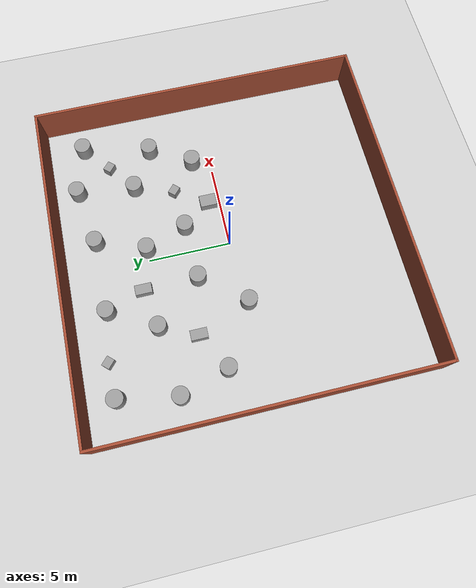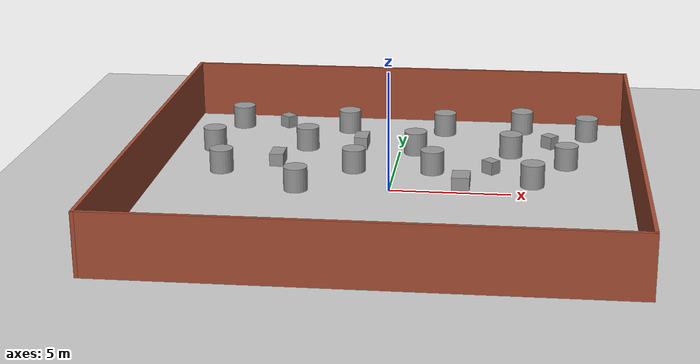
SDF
<sdf version="1.7">
 <world name="default">
  <model name="ground_plane">
   <static>1</static>
   <link name="link">
    <collision name="collision">
     <geometry><plane><normal>0 0 1</normal><size>100 100</size></plane></geometry>
     <surface><friction><ode><mu>100</mu><mu2>50</mu2></ode></friction></surface>
    </collision>
    <visual name="visual">
     <cast_shadows>0</cast_shadows>
     <geometry><plane><normal>0 0 1</normal><size>100 100</size></plane></geometry>
     <material>
      <script><uri>file://media/materials/scripts/gazebo.material</uri><name>Gazebo/Grey</name></script>
     </material>
    </visual>
   </link>
  </model>
  <model name="20_20_wall">
   <link name="Wall_0">
    <collision name="Wall_0_Collision">
     <geometry><box><size>20.15 0.15 2.5</size></box></geometry>
     <pose>0 0 1.25 0 -0 0</pose>
    </collision>
    <visual name="Wall_0_Visual">
     <pose>0 0 1.25 0 -0 0</pose>
     <geometry><box><size>20.15 0.15 2.5</size></box></geometry>
     <material>
      <script><uri>file://media/materials/scripts/gazebo.material</uri><name>Gazebo/Bricks</name></script>
      <ambient>1 1 1 1</ambient>
     </material>
     <meta><layer>0</layer></meta>
    </visual>
    <pose>0 10 0 0 -0 0</pose>
   </link>
   <link name="Wall_1">
    <collision name="Wall_1_Collision">
     <geometry><box><size>20.15 0.15 2.5</size></box></geometry>
     <pose>0 0 1.25 0 -0 0</pose>
    </collision>
    <visual name="Wall_1_Visual">
     <pose>0 0 1.25 0 -0 0</pose>
     <geometry><box><size>20.15 0.15 2.5</size></box></geometry>
     <material>
      <script><uri>file://media/materials/scripts/gazebo.material</uri><name>Gazebo/Bricks</name></script>
      <ambient>1 1 1 1</ambient>
     </material>
     <meta><layer>0</layer></meta>
    </visual>
    <pose>10 0 0 0 -0 -1.5708</pose>
   </link>
   <link name="Wall_2">
    <collision name="Wall_2_Collision">
     <geometry><box><size>20.15 0.15 2.5</size></box></geometry>
     <pose>0 0 1.25 0 -0 0</pose>
    </collision>
    <visual name="Wall_2_Visual">
     <pose>0 0 1.25 0 -0 0</pose>
     <geometry><box><size>20.15 0.15 2.5</size></box></geometry>
     <material>
      <script><uri>file://media/materials/scripts/gazebo.material</uri><name>Gazebo/Bricks</name></script>
      <ambient>1 1 1 1</ambient>
     </material>
     <meta><layer>0</layer></meta>
    </visual>
    <pose>0 -10 0 0 -0 3.14159</pose>
   </link>
   <link name="Wall_3">
    <collision name="Wall_3_Collision">
     <geometry><box><size>20.15 0.15 2.5</size></box></geometry>
     <pose>0 0 1.25 0 -0 0</pose>
    </collision>
    <visual name="Wall_3_Visual">
     <pose>0 0 1.25 0 -0 0</pose>
     <geometry><box><size>20.15 0.15 2.5</size></box></geometry>
     <material>
      <script><uri>file://media/materials/scripts/gazebo.material</uri><name>Gazebo/Bricks</name></script>
      <ambient>1 1 1 1</ambient>
     </material>
     <meta><layer>0</layer></meta>
    </visual>
    <pose>-10 0 0 0 -0 1.5708</pose>
   </link>
   <static>1</static>
  </model>
  <model name="固定圆柱">
   <link name="link">
    <inertial>
     <mass>1</mass>
     <inertia><ixx>0.145833</ixx><ixy>0</ixy><ixz>0</ixz><iyy>0.145833</iyy><iyz>0</iyz><izz>0.125</izz></inertia>
    </inertial>
    <visual name="visual">
     <geometry><cylinder><radius>0.5</radius><length>1</length></cylinder></geometry>
     <material>
      <script><name>Gazebo/Grey</name><uri>file://media/materials/scripts/gazebo.material</uri></script>
      <shader type="pixel"><normal_map>__default__</normal_map></shader>
     </material>
    </visual>
    <collision name="collision">
     <geometry><cylinder><radius>0.5</radius><length>1</length></cylinder></geometry>
     <surface>
      <friction>
       <ode><mu>1</mu><mu2>1</mu2><fdir1>0 0 0</fdir1><slip1>0</slip1><slip2>0</slip2></ode>
       <torsional>
        <coefficient>1</coefficient>
        <patch_radius>0</patch_radius>
        <surface_radius>0</surface_radius>
        <use_patch_radius>1</use_patch_radius>
        <ode><slip>0</slip></ode>
       </torsional>
      </friction>
      <bounce><restitution_coefficient>0</restitution_coefficient><threshold>1e+06</threshold></bounce>
      <contact>
       <collide_without_contact>0</collide_without_contact>
       <collide_without_contact_bitmask>1</collide_without_contact_bitmask>
       <collide_bitmask>1</collide_bitmask>
       <ode>
        <soft_cfm>0</soft_cfm>
        <soft_erp>0.2</soft_erp>
        <kp>1e+13</kp>
        <kd>1</kd>
        <max_vel>0.01</max_vel>
        <min_depth>0</min_depth>
       </ode>
       <bullet>
        <split_impulse>1</split_impulse>
        <split_impulse_penetration_threshold>-0.01</split_impulse_penetration_threshold>
        <soft_cfm>0</soft_cfm>
        <soft_erp>0.2</soft_erp>
        <kp>1e+13</kp>
        <kd>1</kd>
       </bullet>
      </contact>
     </surface>
    </collision>
   </link>
   <static>1</static>
   <pose>0.688811 4.97248 0.5 0 -0 0</pose>
  </model>
  <model name="固定圆柱_clone">
   <link name="link">
    <inertial>
     <mass>1</mass>
     <inertia><ixx>0.145833</ixx><ixy>0</ixy><ixz>0</ixz><iyy>0.145833</iyy><iyz>0</iyz><izz>0.125</izz></inertia>
    </inertial>
    <visual name="visual">
     <geometry><cylinder><radius>0.5</radius><length>1</length></cylinder></geometry>
     <material>
      <script><name>Gazebo/Grey</name><uri>file://media/materials/scripts/gazebo.material</uri></script>
      <shader type="pixel"><normal_map>__default__</normal_map></shader>
     </material>
    </visual>
    <collision name="collision">
     <geometry><cylinder><radius>0.5</radius><length>1</length></cylinder></geometry>
     <surface>
      <friction>
       <ode><mu>1</mu><mu2>1</mu2><fdir1>0 0 0</fdir1><slip1>0</slip1><slip2>0</slip2></ode>
       <torsional>
        <coefficient>1</coefficient>
        <patch_radius>0</patch_radius>
        <surface_radius>0</surface_radius>
        <use_patch_radius>1</use_patch_radius>
        <ode><slip>0</slip></ode>
       </torsional>
      </friction>
      <bounce><restitution_coefficient>0</restitution_coefficient><threshold>1e+06</threshold></bounce>
      <contact>
       <collide_without_contact>0</collide_without_contact>
       <collide_without_contact_bitmask>1</collide_without_contact_bitmask>
       <collide_bitmask>1</collide_bitmask>
       <ode>
        <soft_cfm>0</soft_cfm>
        <soft_erp>0.2</soft_erp>
        <kp>1e+13</kp>
        <kd>1</kd>
        <max_vel>0.01</max_vel>
        <min_depth>0</min_depth>
       </ode>
       <bullet>
        <split_impulse>1</split_impulse>
        <split_impulse_penetration_threshold>-0.01</split_impulse_penetration_threshold>
        <soft_cfm>0</soft_cfm>
        <soft_erp>0.2</soft_erp>
        <kp>1e+13</kp>
        <kd>1</kd>
       </bullet>
      </contact>
     </surface>
    </collision>
   </link>
   <static>1</static>
   <pose>-4.14469 5.18074 0.5 0 -0 0</pose>
  </model>
  <model name="固定圆柱_clone_1">
   <link name="link">
    <inertial>
     <mass>1</mass>
     <inertia><ixx>0.145833</ixx><ixy>0</ixy><ixz>0</ixz><iyy>0.145833</iyy><iyz>0</iyz><izz>0.125</izz></inertia>
    </inertial>
    <visual name="visual">
     <geometry><cylinder><radius>0.5</radius><length>1</length></cylinder></geometry>
     <material>
      <script><name>Gazebo/Grey</name><uri>file://media/materials/scripts/gazebo.material</uri></script>
      <shader type="pixel"><normal_map>__default__</normal_map></shader>
     </material>
    </visual>
    <collision name="collision">
     <geometry><cylinder><radius>0.5</radius><length>1</length></cylinder></geometry>
     <surface>
      <friction>
       <ode><mu>1</mu><mu2>1</mu2><fdir1>0 0 0</fdir1><slip1>0</slip1><slip2>0</slip2></ode>
       <torsional>
        <coefficient>1</coefficient>
        <patch_radius>0</patch_radius>
        <surface_radius>0</surface_radius>
        <use_patch_radius>1</use_patch_radius>
        <ode><slip>0</slip></ode>
       </torsional>
      </friction>
      <bounce><restitution_coefficient>0</restitution_coefficient><threshold>1e+06</threshold></bounce>
      <contact>
       <collide_without_contact>0</collide_without_contact>
       <collide_without_contact_bitmask>1</collide_without_contact_bitmask>
       <collide_bitmask>1</collide_bitmask>
       <ode>
        <soft_cfm>0</soft_cfm>
        <soft_erp>0.2</soft_erp>
        <kp>1e+13</kp>
        <kd>1</kd>
        <max_vel>0.01</max_vel>
        <min_depth>0</min_depth>
       </ode>
       <bullet>
        <split_impulse>1</split_impulse>
        <split_impulse_penetration_threshold>-0.01</split_impulse_penetration_threshold>
        <soft_cfm>0</soft_cfm>
        <soft_erp>0.2</soft_erp>
        <kp>1e+13</kp>
        <kd>1</kd>
       </bullet>
      </contact>
     </surface>
    </collision>
   </link>
   <static>1</static>
   <pose>-3.82318 -0.245467 0.5 0 -0 0</pose>
  </model>
  <model name="固定圆柱_clone_3">
   <link name="link">
    <inertial>
     <mass>1</mass>
     <inertia><ixx>0.145833</ixx><ixy>0</ixy><ixz>0</ixz><iyy>0.145833</iyy><iyz>0</iyz><izz>0.125</izz></inertia>
    </inertial>
    <visual name="visual">
     <geometry><cylinder><radius>0.5</radius><length>1</length></cylinder></geometry>
     <material>
      <script><name>Gazebo/Grey</name><uri>file://media/materials/scripts/gazebo.material</uri></script>
      <shader type="pixel"><normal_map>__default__</normal_map></shader>
     </material>
    </visual>
    <collision name="collision">
     <geometry><cylinder><radius>0.5</radius><length>1</length></cylinder></geometry>
     <surface>
      <friction>
       <ode><mu>1</mu><mu2>1</mu2><fdir1>0 0 0</fdir1><slip1>0</slip1><slip2>0</slip2></ode>
       <torsional>
        <coefficient>1</coefficient>
        <patch_radius>0</patch_radius>
        <surface_radius>0</surface_radius>
        <use_patch_radius>1</use_patch_radius>
        <ode><slip>0</slip></ode>
       </torsional>
      </friction>
      <bounce><restitution_coefficient>0</restitution_coefficient><threshold>1e+06</threshold></bounce>
      <contact>
       <collide_without_contact>0</collide_without_contact>
       <collide_without_contact_bitmask>1</collide_without_contact_bitmask>
       <collide_bitmask>1</collide_bitmask>
       <ode>
        <soft_cfm>0</soft_cfm>
        <soft_erp>0.2</soft_erp>
        <kp>1e+13</kp>
        <kd>1</kd>
        <max_vel>0.01</max_vel>
        <min_depth>0</min_depth>
       </ode>
       <bullet>
        <split_impulse>1</split_impulse>
        <split_impulse_penetration_threshold>-0.01</split_impulse_penetration_threshold>
        <soft_cfm>0</soft_cfm>
        <soft_erp>0.2</soft_erp>
        <kp>1e+13</kp>
        <kd>1</kd>
       </bullet>
      </contact>
     </surface>
    </collision>
   </link>
   <static>1</static>
   <pose>4.88498 4.9968 0.5 0 -0 0</pose>
  </model>
  <model name="固定圆柱_clone_6">
   <link name="link">
    <inertial>
     <mass>1</mass>
     <inertia><ixx>0.145833</ixx><ixy>0</ixy><ixz>0</ixz><iyy>0.145833</iyy><iyz>0</iyz><izz>0.125</izz></inertia>
    </inertial>
    <visual name="visual">
     <geometry><cylinder><radius>0.5</radius><length>1</length></cylinder></geometry>
     <material>
      <script><name>Gazebo/Grey</name><uri>file://media/materials/scripts/gazebo.material</uri></script>
      <shader type="pixel"><normal_map>__default__</normal_map></shader>
     </material>
    </visual>
    <collision name="collision">
     <geometry><cylinder><radius>0.5</radius><length>1</length></cylinder></geometry>
     <surface>
      <friction>
       <ode><mu>1</mu><mu2>1</mu2><fdir1>0 0 0</fdir1><slip1>0</slip1><slip2>0</slip2></ode>
       <torsional>
        <coefficient>1</coefficient>
        <patch_radius>0</patch_radius>
        <surface_radius>0</surface_radius>
        <use_patch_radius>1</use_patch_radius>
        <ode><slip>0</slip></ode>
       </torsional>
      </friction>
      <bounce><restitution_coefficient>0</restitution_coefficient><threshold>1e+06</threshold></bounce>
      <contact>
       <collide_without_contact>0</collide_without_contact>
       <collide_without_contact_bitmask>1</collide_without_contact_bitmask>
       <collide_bitmask>1</collide_bitmask>
       <ode>
        <soft_cfm>0</soft_cfm>
        <soft_erp>0.2</soft_erp>
        <kp>1e+13</kp>
        <kd>1</kd>
        <max_vel>0.01</max_vel>
        <min_depth>0</min_depth>
       </ode>
       <bullet>
        <split_impulse>1</split_impulse>
        <split_impulse_penetration_threshold>-0.01</split_impulse_penetration_threshold>
        <soft_cfm>0</soft_cfm>
        <soft_erp>0.2</soft_erp>
        <kp>1e+13</kp>
        <kd>1</kd>
       </bullet>
      </contact>
     </surface>
    </collision>
   </link>
   <static>1</static>
   <pose>5.86042 1.12448 0.5 0 -0 0</pose>
  </model>
  <model name="固定圆柱_clone_7">
   <link name="link">
    <inertial>
     <mass>1</mass>
     <inertia><ixx>0.145833</ixx><ixy>0</ixy><ixz>0</ixz><iyy>0.145833</iyy><iyz>0</iyz><izz>0.125</izz></inertia>
    </inertial>
    <visual name="visual">
     <geometry><cylinder><radius>0.5</radius><length>1</length></cylinder></geometry>
     <material>
      <script><name>Gazebo/Grey</name><uri>file://media/materials/scripts/gazebo.material</uri></script>
      <shader type="pixel"><normal_map>__default__</normal_map></shader>
     </material>
    </visual>
    <collision name="collision">
     <geometry><cylinder><radius>0.5</radius><length>1</length></cylinder></geometry>
     <surface>
      <friction>
       <ode><mu>1</mu><mu2>1</mu2><fdir1>0 0 0</fdir1><slip1>0</slip1><slip2>0</slip2></ode>
       <torsional>
        <coefficient>1</coefficient>
        <patch_radius>0</patch_radius>
        <surface_radius>0</surface_radius>
        <use_patch_radius>1</use_patch_radius>
        <ode><slip>0</slip></ode>
       </torsional>
      </friction>
      <bounce><restitution_coefficient>0</restitution_coefficient><threshold>1e+06</threshold></bounce>
      <contact>
       <collide_without_contact>0</collide_without_contact>
       <collide_without_contact_bitmask>1</collide_without_contact_bitmask>
       <collide_bitmask>1</collide_bitmask>
       <ode>
        <soft_cfm>0</soft_cfm>
        <soft_erp>0.2</soft_erp>
        <kp>1e+13</kp>
        <kd>1</kd>
        <max_vel>0.01</max_vel>
        <min_depth>0</min_depth>
       </ode>
       <bullet>
        <split_impulse>1</split_impulse>
        <split_impulse_penetration_threshold>-0.01</split_impulse_penetration_threshold>
        <soft_cfm>0</soft_cfm>
        <soft_erp>0.2</soft_erp>
        <kp>1e+13</kp>
        <kd>1</kd>
       </bullet>
      </contact>
     </surface>
    </collision>
   </link>
   <static>1</static>
   <pose>8.25202 7.7046 0.5 0 -0 0</pose>
  </model>
  <model name="固定圆柱_clone_8">
   <link name="link">
    <inertial>
     <mass>1</mass>
     <inertia><ixx>0.145833</ixx><ixy>0</ixy><ixz>0</ixz><iyy>0.145833</iyy><iyz>0</iyz><izz>0.125</izz></inertia>
    </inertial>
    <visual name="visual">
     <geometry><cylinder><radius>0.5</radius><length>1</length></cylinder></geometry>
     <material>
      <script><name>Gazebo/Grey</name><uri>file://media/materials/scripts/gazebo.material</uri></script>
      <shader type="pixel"><normal_map>__default__</normal_map></shader>
     </material>
    </visual>
    <collision name="collision">
     <geometry><cylinder><radius>0.5</radius><length>1</length></cylinder></geometry>
     <surface>
      <friction>
       <ode><mu>1</mu><mu2>1</mu2><fdir1>0 0 0</fdir1><slip1>0</slip1><slip2>0</slip2></ode>
       <torsional>
        <coefficient>1</coefficient>
        <patch_radius>0</patch_radius>
        <surface_radius>0</surface_radius>
        <use_patch_radius>1</use_patch_radius>
        <ode><slip>0</slip></ode>
       </torsional>
      </friction>
      <bounce><restitution_coefficient>0</restitution_coefficient><threshold>1e+06</threshold></bounce>
      <contact>
       <collide_without_contact>0</collide_without_contact>
       <collide_without_contact_bitmask>1</collide_without_contact_bitmask>
       <collide_bitmask>1</collide_bitmask>
       <ode>
        <soft_cfm>0</soft_cfm>
        <soft_erp>0.2</soft_erp>
        <kp>1e+13</kp>
        <kd>1</kd>
        <max_vel>0.01</max_vel>
        <min_depth>0</min_depth>
       </ode>
       <bullet>
        <split_impulse>1</split_impulse>
        <split_impulse_penetration_threshold>-0.01</split_impulse_penetration_threshold>
        <soft_cfm>0</soft_cfm>
        <soft_erp>0.2</soft_erp>
        <kp>1e+13</kp>
        <kd>1</kd>
       </bullet>
      </contact>
     </surface>
    </collision>
   </link>
   <static>1</static>
   <pose>1.81026 7.9231 0.5 0 -0 0</pose>
  </model>
  <model name="固定圆柱_clone_9">
   <link name="link">
    <inertial>
     <mass>1</mass>
     <inertia><ixx>0.145833</ixx><ixy>0</ixy><ixz>0</ixz><iyy>0.145833</iyy><iyz>0</iyz><izz>0.125</izz></inertia>
    </inertial>
    <visual name="visual">
     <geometry><cylinder><radius>0.5</radius><length>1</length></cylinder></geometry>
     <material>
      <script><name>Gazebo/Grey</name><uri>file://media/materials/scripts/gazebo.material</uri></script>
      <shader type="pixel"><normal_map>__default__</normal_map></shader>
     </material>
    </visual>
    <collision name="collision">
     <geometry><cylinder><radius>0.5</radius><length>1</length></cylinder></geometry>
     <surface>
      <friction>
       <ode><mu>1</mu><mu2>1</mu2><fdir1>0 0 0</fdir1><slip1>0</slip1><slip2>0</slip2></ode>
       <torsional>
        <coefficient>1</coefficient>
        <patch_radius>0</patch_radius>
        <surface_radius>0</surface_radius>
        <use_patch_radius>1</use_patch_radius>
        <ode><slip>0</slip></ode>
       </torsional>
      </friction>
      <bounce><restitution_coefficient>0</restitution_coefficient><threshold>1e+06</threshold></bounce>
      <contact>
       <collide_without_contact>0</collide_without_contact>
       <collide_without_contact_bitmask>1</collide_without_contact_bitmask>
       <collide_bitmask>1</collide_bitmask>
       <ode>
        <soft_cfm>0</soft_cfm>
        <soft_erp>0.2</soft_erp>
        <kp>1e+13</kp>
        <kd>1</kd>
        <max_vel>0.01</max_vel>
        <min_depth>0</min_depth>
       </ode>
       <bullet>
        <split_impulse>1</split_impulse>
        <split_impulse_penetration_threshold>-0.01</split_impulse_penetration_threshold>
        <soft_cfm>0</soft_cfm>
        <soft_erp>0.2</soft_erp>
        <kp>1e+13</kp>
        <kd>1</kd>
       </bullet>
      </contact>
     </surface>
    </collision>
   </link>
   <static>1</static>
   <pose>-2.59298 7.92968 0.5 0 -0 0</pose>
  </model>
  <model name="固定圆柱_clone_10">
   <link name="link">
    <inertial>
     <mass>1</mass>
     <inertia><ixx>0.145833</ixx><ixy>0</ixy><ixz>0</ixz><iyy>0.145833</iyy><iyz>0</iyz><izz>0.125</izz></inertia>
    </inertial>
    <visual name="visual">
     <geometry><cylinder><radius>0.5</radius><length>1</length></cylinder></geometry>
     <material>
      <script><name>Gazebo/Grey</name><uri>file://media/materials/scripts/gazebo.material</uri></script>
      <shader type="pixel"><normal_map>__default__</normal_map></shader>
     </material>
    </visual>
    <collision name="collision">
     <geometry><cylinder><radius>0.5</radius><length>1</length></cylinder></geometry>
     <surface>
      <friction>
       <ode><mu>1</mu><mu2>1</mu2><fdir1>0 0 0</fdir1><slip1>0</slip1><slip2>0</slip2></ode>
       <torsional>
        <coefficient>1</coefficient>
        <patch_radius>0</patch_radius>
        <surface_radius>0</surface_radius>
        <use_patch_radius>1</use_patch_radius>
        <ode><slip>0</slip></ode>
       </torsional>
      </friction>
      <bounce><restitution_coefficient>0</restitution_coefficient><threshold>1e+06</threshold></bounce>
      <contact>
       <collide_without_contact>0</collide_without_contact>
       <collide_without_contact_bitmask>1</collide_without_contact_bitmask>
       <collide_bitmask>1</collide_bitmask>
       <ode>
        <soft_cfm>0</soft_cfm>
        <soft_erp>0.2</soft_erp>
        <kp>1e+13</kp>
        <kd>1</kd>
        <max_vel>0.01</max_vel>
        <min_depth>0</min_depth>
       </ode>
       <bullet>
        <split_impulse>1</split_impulse>
        <split_impulse_penetration_threshold>-0.01</split_impulse_penetration_threshold>
        <soft_cfm>0</soft_cfm>
        <soft_erp>0.2</soft_erp>
        <kp>1e+13</kp>
        <kd>1</kd>
       </bullet>
      </contact>
     </surface>
    </collision>
   </link>
   <static>1</static>
   <pose>-7.60473 8.21031 0.5 0 -0 0</pose>
  </model>
  <model name="固定圆柱_clone_13">
   <link name="link">
    <inertial>
     <mass>1</mass>
     <inertia><ixx>0.145833</ixx><ixy>0</ixy><ixz>0</ixz><iyy>0.145833</iyy><iyz>0</iyz><izz>0.125</izz></inertia>
    </inertial>
    <visual name="visual">
     <geometry><cylinder><radius>0.5</radius><length>1</length></cylinder></geometry>
     <material>
      <script><name>Gazebo/Grey</name><uri>file://media/materials/scripts/gazebo.material</uri></script>
      <shader type="pixel"><normal_map>__default__</normal_map></shader>
     </material>
    </visual>
    <collision name="collision">
     <geometry><cylinder><radius>0.5</radius><length>1</length></cylinder></geometry>
     <surface>
      <friction>
       <ode><mu>1</mu><mu2>1</mu2><fdir1>0 0 0</fdir1><slip1>0</slip1><slip2>0</slip2></ode>
       <torsional>
        <coefficient>1</coefficient>
        <patch_radius>0</patch_radius>
        <surface_radius>0</surface_radius>
        <use_patch_radius>1</use_patch_radius>
        <ode><slip>0</slip></ode>
       </torsional>
      </friction>
      <bounce><restitution_coefficient>0</restitution_coefficient><threshold>1e+06</threshold></bounce>
      <contact>
       <collide_without_contact>0</collide_without_contact>
       <collide_without_contact_bitmask>1</collide_without_contact_bitmask>
       <collide_bitmask>1</collide_bitmask>
       <ode>
        <soft_cfm>0</soft_cfm>
        <soft_erp>0.2</soft_erp>
        <kp>1e+13</kp>
        <kd>1</kd>
        <max_vel>0.01</max_vel>
        <min_depth>0</min_depth>
       </ode>
       <bullet>
        <split_impulse>1</split_impulse>
        <split_impulse_penetration_threshold>-0.01</split_impulse_penetration_threshold>
        <soft_cfm>0</soft_cfm>
        <soft_erp>0.2</soft_erp>
        <kp>1e+13</kp>
        <kd>1</kd>
       </bullet>
      </contact>
     </surface>
    </collision>
   </link>
   <static>1</static>
   <pose>-1.73232 2.34307 0.5 0 -0 0</pose>
  </model>
  <model name="固定圆柱_clone_18">
   <link name="link">
    <inertial>
     <mass>1</mass>
     <inertia><ixx>0.145833</ixx><ixy>0</ixy><ixz>0</ixz><iyy>0.145833</iyy><iyz>0</iyz><izz>0.125</izz></inertia>
    </inertial>
    <visual name="visual">
     <geometry><cylinder><radius>0.5</radius><length>1</length></cylinder></geometry>
     <material>
      <script><name>Gazebo/Grey</name><uri>file://media/materials/scripts/gazebo.material</uri></script>
      <shader type="pixel"><normal_map>__default__</normal_map></shader>
     </material>
    </visual>
    <collision name="collision">
     <geometry><cylinder><radius>0.5</radius><length>1</length></cylinder></geometry>
     <surface>
      <friction>
       <ode><mu>1</mu><mu2>1</mu2><fdir1>0 0 0</fdir1><slip1>0</slip1><slip2>0</slip2></ode>
       <torsional>
        <coefficient>1</coefficient>
        <patch_radius>0</patch_radius>
        <surface_radius>0</surface_radius>
        <use_patch_radius>1</use_patch_radius>
        <ode><slip>0</slip></ode>
       </torsional>
      </friction>
      <bounce><restitution_coefficient>0</restitution_coefficient><threshold>1e+06</threshold></bounce>
      <contact>
       <collide_without_contact>0</collide_without_contact>
       <collide_without_contact_bitmask>1</collide_without_contact_bitmask>
       <collide_bitmask>1</collide_bitmask>
       <ode>
        <soft_cfm>0</soft_cfm>
        <soft_erp>0.2</soft_erp>
        <kp>1e+13</kp>
        <kd>1</kd>
        <max_vel>0.01</max_vel>
        <min_depth>0</min_depth>
       </ode>
       <bullet>
        <split_impulse>1</split_impulse>
        <split_impulse_penetration_threshold>-0.01</split_impulse_penetration_threshold>
        <soft_cfm>0</soft_cfm>
        <soft_erp>0.2</soft_erp>
        <kp>1e+13</kp>
        <kd>1</kd>
       </bullet>
      </contact>
     </surface>
    </collision>
   </link>
   <static>1</static>
   <pose>-7.34245 1.78442 0.5 0 -0 0</pose>
  </model>
  <model name="固定圆柱_clone_19">
   <link name="link">
    <inertial>
     <mass>1</mass>
     <inertia><ixx>0.145833</ixx><ixy>0</ixy><ixz>0</ixz><iyy>0.145833</iyy><iyz>0</iyz><izz>0.125</izz></inertia>
    </inertial>
    <visual name="visual">
     <geometry><cylinder><radius>0.5</radius><length>1</length></cylinder></geometry>
     <material>
      <script><name>Gazebo/Grey</name><uri>file://media/materials/scripts/gazebo.material</uri></script>
      <shader type="pixel"><normal_map>__default__</normal_map></shader>
     </material>
    </visual>
    <collision name="collision">
     <geometry><cylinder><radius>0.5</radius><length>1</length></cylinder></geometry>
     <surface>
      <friction>
       <ode><mu>1</mu><mu2>1</mu2><fdir1>0 0 0</fdir1><slip1>0</slip1><slip2>0</slip2></ode>
       <torsional>
        <coefficient>1</coefficient>
        <patch_radius>0</patch_radius>
        <surface_radius>0</surface_radius>
        <use_patch_radius>1</use_patch_radius>
        <ode><slip>0</slip></ode>
       </torsional>
      </friction>
      <bounce><restitution_coefficient>0</restitution_coefficient><threshold>1e+06</threshold></bounce>
      <contact>
       <collide_without_contact>0</collide_without_contact>
       <collide_without_contact_bitmask>1</collide_without_contact_bitmask>
       <collide_bitmask>1</collide_bitmask>
       <ode>
        <soft_cfm>0</soft_cfm>
        <soft_erp>0.2</soft_erp>
        <kp>1e+13</kp>
        <kd>1</kd>
        <max_vel>0.01</max_vel>
        <min_depth>0</min_depth>
       </ode>
       <bullet>
        <split_impulse>1</split_impulse>
        <split_impulse_penetration_threshold>-0.01</split_impulse_penetration_threshold>
        <soft_cfm>0</soft_cfm>
        <soft_erp>0.2</soft_erp>
        <kp>1e+13</kp>
        <kd>1</kd>
       </bullet>
      </contact>
     </surface>
    </collision>
   </link>
   <static>1</static>
   <pose>-8.243 4.69389 0.5 0 -0 0</pose>
  </model>
  <model name="固定圆柱_clone_21">
   <link name="link">
    <inertial>
     <mass>1</mass>
     <inertia><ixx>0.145833</ixx><ixy>0</ixy><ixz>0</ixz><iyy>0.145833</iyy><iyz>0</iyz><izz>0.125</izz></inertia>
    </inertial>
    <visual name="visual">
     <geometry><cylinder><radius>0.5</radius><length>1</length></cylinder></geometry>
     <material>
      <script><name>Gazebo/Grey</name><uri>file://media/materials/scripts/gazebo.material</uri></script>
      <shader type="pixel"><normal_map>__default__</normal_map></shader>
     </material>
    </visual>
    <collision name="collision">
     <geometry><cylinder><radius>0.5</radius><length>1</length></cylinder></geometry>
     <surface>
      <friction>
       <ode><mu>1</mu><mu2>1</mu2><fdir1>0 0 0</fdir1><slip1>0</slip1><slip2>0</slip2></ode>
       <torsional>
        <coefficient>1</coefficient>
        <patch_radius>0</patch_radius>
        <surface_radius>0</surface_radius>
        <use_patch_radius>1</use_patch_radius>
        <ode><slip>0</slip></ode>
       </torsional>
      </friction>
      <bounce><restitution_coefficient>0</restitution_coefficient><threshold>1e+06</threshold></bounce>
      <contact>
       <collide_without_contact>0</collide_without_contact>
       <collide_without_contact_bitmask>1</collide_without_contact_bitmask>
       <collide_bitmask>1</collide_bitmask>
       <ode>
        <soft_cfm>0</soft_cfm>
        <soft_erp>0.2</soft_erp>
        <kp>1e+13</kp>
        <kd>1</kd>
        <max_vel>0.01</max_vel>
        <min_depth>0</min_depth>
       </ode>
       <bullet>
        <split_impulse>1</split_impulse>
        <split_impulse_penetration_threshold>-0.01</split_impulse_penetration_threshold>
        <soft_cfm>0</soft_cfm>
        <soft_erp>0.2</soft_erp>
        <kp>1e+13</kp>
        <kd>1</kd>
       </bullet>
      </contact>
     </surface>
    </collision>
   </link>
   <static>1</static>
   <pose>1.61045 2.44316 0.5 0 -0 0</pose>
  </model>
  <model name="固定圆柱_clone_24">
   <link name="link">
    <inertial>
     <mass>1</mass>
     <inertia><ixx>0.145833</ixx><ixy>0</ixy><ixz>0</ixz><iyy>0.145833</iyy><iyz>0</iyz><izz>0.125</izz></inertia>
    </inertial>
    <visual name="visual">
     <geometry><cylinder><radius>0.5</radius><length>1</length></cylinder></geometry>
     <material>
      <script><name>Gazebo/Grey</name><uri>file://media/materials/scripts/gazebo.material</uri></script>
      <shader type="pixel"><normal_map>__default__</normal_map></shader>
     </material>
    </visual>
    <collision name="collision">
     <geometry><cylinder><radius>0.5</radius><length>1</length></cylinder></geometry>
     <surface>
      <friction>
       <ode><mu>1</mu><mu2>1</mu2><fdir1>0 0 0</fdir1><slip1>0</slip1><slip2>0</slip2></ode>
       <torsional>
        <coefficient>1</coefficient>
        <patch_radius>0</patch_radius>
        <surface_radius>0</surface_radius>
        <use_patch_radius>1</use_patch_radius>
        <ode><slip>0</slip></ode>
       </torsional>
      </friction>
      <bounce><restitution_coefficient>0</restitution_coefficient><threshold>1e+06</threshold></bounce>
      <contact>
       <collide_without_contact>0</collide_without_contact>
       <collide_without_contact_bitmask>1</collide_without_contact_bitmask>
       <collide_bitmask>1</collide_bitmask>
       <ode>
        <soft_cfm>0</soft_cfm>
        <soft_erp>0.2</soft_erp>
        <kp>1e+13</kp>
        <kd>1</kd>
        <max_vel>0.01</max_vel>
        <min_depth>0</min_depth>
       </ode>
       <bullet>
        <split_impulse>1</split_impulse>
        <split_impulse_penetration_threshold>-0.01</split_impulse_penetration_threshold>
        <soft_cfm>0</soft_cfm>
        <soft_erp>0.2</soft_erp>
        <kp>1e+13</kp>
        <kd>1</kd>
       </bullet>
      </contact>
     </surface>
    </collision>
   </link>
   <static>1</static>
   <pose>7.27864 3.61552 0.5 0 -0 0</pose>
  </model>
  <model name="固定圆柱_clone_25">
   <link name="link">
    <inertial>
     <mass>1</mass>
     <inertia><ixx>0.145833</ixx><ixy>0</ixy><ixz>0</ixz><iyy>0.145833</iyy><iyz>0</iyz><izz>0.125</izz></inertia>
    </inertial>
    <visual name="visual">
     <geometry><cylinder><radius>0.5</radius><length>1</length></cylinder></geometry>
     <material>
      <script><name>Gazebo/Grey</name><uri>file://media/materials/scripts/gazebo.material</uri></script>
      <shader type="pixel"><normal_map>__default__</normal_map></shader>
     </material>
    </visual>
    <collision name="collision">
     <geometry><cylinder><radius>0.5</radius><length>1</length></cylinder></geometry>
     <surface>
      <friction>
       <ode><mu>1</mu><mu2>1</mu2><fdir1>0 0 0</fdir1><slip1>0</slip1><slip2>0</slip2></ode>
       <torsional>
        <coefficient>1</coefficient>
        <patch_radius>0</patch_radius>
        <surface_radius>0</surface_radius>
        <use_patch_radius>1</use_patch_radius>
        <ode><slip>0</slip></ode>
       </torsional>
      </friction>
      <bounce><restitution_coefficient>0</restitution_coefficient><threshold>1e+06</threshold></bounce>
      <contact>
       <collide_without_contact>0</collide_without_contact>
       <collide_without_contact_bitmask>1</collide_without_contact_bitmask>
       <collide_bitmask>1</collide_bitmask>
       <ode>
        <soft_cfm>0</soft_cfm>
        <soft_erp>0.2</soft_erp>
        <kp>1e+13</kp>
        <kd>1</kd>
        <max_vel>0.01</max_vel>
        <min_depth>0</min_depth>
       </ode>
       <bullet>
        <split_impulse>1</split_impulse>
        <split_impulse_penetration_threshold>-0.01</split_impulse_penetration_threshold>
        <soft_cfm>0</soft_cfm>
        <soft_erp>0.2</soft_erp>
        <kp>1e+13</kp>
        <kd>1</kd>
       </bullet>
      </contact>
     </surface>
    </collision>
   </link>
   <static>1</static>
   <pose>5.32088 8.4932 0.5 0 -0 0</pose>
  </model>
  <model name="固定正方体_0">
   <link name="link">
    <inertial>
     <mass>1</mass>
     <inertia>
      <ixx>0.166667</ixx>
      <ixy>0</ixy>
      <ixz>0</ixz>
      <iyy>0.166667</iyy>
      <iyz>0</iyz>
      <izz>0.166667</izz>
     </inertia>
    </inertial>
    <visual name="visual">
     <geometry><box><size>0.599074 1 0.554715</size></box></geometry>
     <material>
      <script><name>Gazebo/Grey</name><uri>file://media/materials/scripts/gazebo.material</uri></script>
      <shader type="pixel"><normal_map>__default__</normal_map></shader>
     </material>
    </visual>
    <collision name="collision">
     <geometry><box><size>0.599074 1 0.554715</size></box></geometry>
     <surface>
      <friction>
       <ode><mu>1</mu><mu2>1</mu2><fdir1>0 0 0</fdir1><slip1>0</slip1><slip2>0</slip2></ode>
       <torsional>
        <coefficient>1</coefficient>
        <patch_radius>0</patch_radius>
        <surface_radius>0</surface_radius>
        <use_patch_radius>1</use_patch_radius>
        <ode><slip>0</slip></ode>
       </torsional>
      </friction>
      <bounce><restitution_coefficient>0</restitution_coefficient><threshold>1e+06</threshold></bounce>
      <contact>
       <collide_without_contact>0</collide_without_contact>
       <collide_without_contact_bitmask>1</collide_without_contact_bitmask>
       <collide_bitmask>1</collide_bitmask>
       <ode>
        <soft_cfm>0</soft_cfm>
        <soft_erp>0.2</soft_erp>
        <kp>1e+13</kp>
        <kd>1</kd>
        <max_vel>0.01</max_vel>
        <min_depth>0</min_depth>
       </ode>
       <bullet>
        <split_impulse>1</split_impulse>
        <split_impulse_penetration_threshold>-0.01</split_impulse_penetration_threshold>
        <soft_cfm>0</soft_cfm>
        <soft_erp>0.2</soft_erp>
        <kp>1e+13</kp>
        <kd>1</kd>
       </bullet>
      </contact>
     </surface>
    </collision>
   </link>
   <static>1</static>
   <pose>-1.77781 5.6334 0.28063 -1e-05 0 0</pose>
  </model>
  <model name="固定正方体_0_clone">
   <link name="link">
    <inertial>
     <mass>1</mass>
     <inertia>
      <ixx>0.166667</ixx>
      <ixy>0</ixy>
      <ixz>0</ixz>
      <iyy>0.166667</iyy>
      <iyz>0</iyz>
      <izz>0.166667</izz>
     </inertia>
    </inertial>
    <visual name="visual">
     <geometry><box><size>0.599074 1 0.554715</size></box></geometry>
     <material>
      <script><name>Gazebo/Grey</name><uri>file://media/materials/scripts/gazebo.material</uri></script>
      <shader type="pixel"><normal_map>__default__</normal_map></shader>
     </material>
    </visual>
    <collision name="collision">
     <geometry><box><size>0.599074 1 0.554715</size></box></geometry>
     <surface>
      <friction>
       <ode><mu>1</mu><mu2>1</mu2><fdir1>0 0 0</fdir1><slip1>0</slip1><slip2>0</slip2></ode>
       <torsional>
        <coefficient>1</coefficient>
        <patch_radius>0</patch_radius>
        <surface_radius>0</surface_radius>
        <use_patch_radius>1</use_patch_radius>
        <ode><slip>0</slip></ode>
       </torsional>
      </friction>
      <bounce><restitution_coefficient>0</restitution_coefficient><threshold>1e+06</threshold></bounce>
      <contact>
       <collide_without_contact>0</collide_without_contact>
       <collide_without_contact_bitmask>1</collide_without_contact_bitmask>
       <collide_bitmask>1</collide_bitmask>
       <ode>
        <soft_cfm>0</soft_cfm>
        <soft_erp>0.2</soft_erp>
        <kp>1e+13</kp>
        <kd>1</kd>
        <max_vel>0.01</max_vel>
        <min_depth>0</min_depth>
       </ode>
       <bullet>
        <split_impulse>1</split_impulse>
        <split_impulse_penetration_threshold>-0.01</split_impulse_penetration_threshold>
        <soft_cfm>0</soft_cfm>
        <soft_erp>0.2</soft_erp>
        <kp>1e+13</kp>
        <kd>1</kd>
       </bullet>
      </contact>
     </surface>
    </collision>
   </link>
   <static>1</static>
   <pose>-5.1179 3.01044 0.28063 -1e-05 0 0</pose>
  </model>
  <model name="固定正方体_0_clone_1">
   <link name="link">
    <inertial>
     <mass>1</mass>
     <inertia>
      <ixx>0.166667</ixx>
      <ixy>0</ixy>
      <ixz>0</ixz>
      <iyy>0.166667</iyy>
      <iyz>0</iyz>
      <izz>0.166667</izz>
     </inertia>
    </inertial>
    <visual name="visual">
     <geometry><box><size>0.599074 0.497349 0.554715</size></box></geometry>
     <material>
      <script><name>Gazebo/Grey</name><uri>file://media/materials/scripts/gazebo.material</uri></script>
      <shader type="pixel"><normal_map>__default__</normal_map></shader>
     </material>
    </visual>
    <collision name="collision">
     <geometry><box><size>0.599074 0.497349 0.554715</size></box></geometry>
     <surface>
      <friction>
       <ode><mu>1</mu><mu2>1</mu2><fdir1>0 0 0</fdir1><slip1>0</slip1><slip2>0</slip2></ode>
       <torsional>
        <coefficient>1</coefficient>
        <patch_radius>0</patch_radius>
        <surface_radius>0</surface_radius>
        <use_patch_radius>1</use_patch_radius>
        <ode><slip>0</slip></ode>
       </torsional>
      </friction>
      <bounce><restitution_coefficient>0</restitution_coefficient><threshold>1e+06</threshold></bounce>
      <contact>
       <collide_without_contact>0</collide_without_contact>
       <collide_without_contact_bitmask>1</collide_without_contact_bitmask>
       <collide_bitmask>1</collide_bitmask>
       <ode>
        <soft_cfm>0</soft_cfm>
        <soft_erp>0.2</soft_erp>
        <kp>1e+13</kp>
        <kd>1</kd>
        <max_vel>0.01</max_vel>
        <min_depth>0</min_depth>
       </ode>
       <bullet>
        <split_impulse>1</split_impulse>
        <split_impulse_penetration_threshold>-0.01</split_impulse_penetration_threshold>
        <soft_cfm>0</soft_cfm>
        <soft_erp>0.2</soft_erp>
        <kp>1e+13</kp>
        <kd>1</kd>
       </bullet>
      </contact>
     </surface>
    </collision>
   </link>
   <static>1</static>
   <pose>4.0926 2.63256 0.280629 -7e-06 -7e-06 -0.734977</pose>
  </model>
  <model name="固定正方体_0_clone_1_clone_1">
   <link name="link">
    <inertial>
     <mass>1</mass>
     <inertia>
      <ixx>0.166667</ixx>
      <ixy>0</ixy>
      <ixz>0</ixz>
      <iyy>0.166667</iyy>
      <iyz>0</iyz>
      <izz>0.166667</izz>
     </inertia>
    </inertial>
    <visual name="visual">
     <geometry><box><size>0.599074 0.497349 0.554715</size></box></geometry>
     <material>
      <script><name>Gazebo/Grey</name><uri>file://media/materials/scripts/gazebo.material</uri></script>
      <shader type="pixel"><normal_map>__default__</normal_map></shader>
     </material>
    </visual>
    <collision name="collision">
     <geometry><box><size>0.599074 0.497349 0.554715</size></box></geometry>
     <surface>
      <friction>
       <ode><mu>1</mu><mu2>1</mu2><fdir1>0 0 0</fdir1><slip1>0</slip1><slip2>0</slip2></ode>
       <torsional>
        <coefficient>1</coefficient>
        <patch_radius>0</patch_radius>
        <surface_radius>0</surface_radius>
        <use_patch_radius>1</use_patch_radius>
        <ode><slip>0</slip></ode>
       </torsional>
      </friction>
      <bounce><restitution_coefficient>0</restitution_coefficient><threshold>1e+06</threshold></bounce>
      <contact>
       <collide_without_contact>0</collide_without_contact>
       <collide_without_contact_bitmask>1</collide_without_contact_bitmask>
       <collide_bitmask>1</collide_bitmask>
       <ode>
        <soft_cfm>0</soft_cfm>
        <soft_erp>0.2</soft_erp>
        <kp>1e+13</kp>
        <kd>1</kd>
        <max_vel>0.01</max_vel>
        <min_depth>0</min_depth>
       </ode>
       <bullet>
        <split_impulse>1</split_impulse>
        <split_impulse_penetration_threshold>-0.01</split_impulse_penetration_threshold>
        <soft_cfm>0</soft_cfm>
        <soft_erp>0.2</soft_erp>
        <kp>1e+13</kp>
        <kd>1</kd>
       </bullet>
      </contact>
     </surface>
    </collision>
   </link>
   <static>1</static>
   <pose>6.58817 6.32433 0.280629 -7e-06 -7e-06 -0.734977</pose>
  </model>
  <model name="固定正方体_0_clone_1_clone_4">
   <link name="link">
    <inertial>
     <mass>1</mass>
     <inertia>
      <ixx>0.166667</ixx>
      <ixy>0</ixy>
      <ixz>0</ixz>
      <iyy>0.166667</iyy>
      <iyz>0</iyz>
      <izz>0.166667</izz>
     </inertia>
    </inertial>
    <visual name="visual">
     <geometry><box><size>0.599074 0.497349 0.554715</size></box></geometry>
     <material>
      <script><name>Gazebo/Grey</name><uri>file://media/materials/scripts/gazebo.material</uri></script>
      <shader type="pixel"><normal_map>__default__</normal_map></shader>
     </material>
    </visual>
    <collision name="collision">
     <geometry><box><size>0.599074 0.497349 0.554715</size></box></geometry>
     <surface>
      <friction>
       <ode><mu>1</mu><mu2>1</mu2><fdir1>0 0 0</fdir1><slip1>0</slip1><slip2>0</slip2></ode>
       <torsional>
        <coefficient>1</coefficient>
        <patch_radius>0</patch_radius>
        <surface_radius>0</surface_radius>
        <use_patch_radius>1</use_patch_radius>
        <ode><slip>0</slip></ode>
       </torsional>
      </friction>
      <bounce><restitution_coefficient>0</restitution_coefficient><threshold>1e+06</threshold></bounce>
      <contact>
       <collide_without_contact>0</collide_without_contact>
       <collide_without_contact_bitmask>1</collide_without_contact_bitmask>
       <collide_bitmask>1</collide_bitmask>
       <ode>
        <soft_cfm>0</soft_cfm>
        <soft_erp>0.2</soft_erp>
        <kp>1e+13</kp>
        <kd>1</kd>
        <max_vel>0.01</max_vel>
        <min_depth>0</min_depth>
       </ode>
       <bullet>
        <split_impulse>1</split_impulse>
        <split_impulse_penetration_threshold>-0.01</split_impulse_penetration_threshold>
        <soft_cfm>0</soft_cfm>
        <soft_erp>0.2</soft_erp>
        <kp>1e+13</kp>
        <kd>1</kd>
       </bullet>
      </contact>
     </surface>
    </collision>
   </link>
   <static>1</static>
   <pose>-5.53144 8.31931 0.280629 -7e-06 -7e-06 -0.734977</pose>
  </model>
  <model name="固定正方体_0_clone_2">
   <link name="link">
    <inertial>
     <mass>1</mass>
     <inertia>
      <ixx>0.166667</ixx>
      <ixy>0</ixy>
      <ixz>0</ixz>
      <iyy>0.166667</iyy>
      <iyz>0</iyz>
      <izz>0.166667</izz>
     </inertia>
    </inertial>
    <visual name="visual">
     <geometry><box><size>0.749909 1 0.554715</size></box></geometry>
     <material>
      <script><name>Gazebo/Grey</name><uri>file://media/materials/scripts/gazebo.material</uri></script>
      <shader type="pixel"><normal_map>__default__</normal_map></shader>
     </material>
    </visual>
    <collision name="collision">
     <geometry><box><size>0.749909 1 0.554715</size></box></geometry>
     <surface>
      <friction>
       <ode><mu>1</mu><mu2>1</mu2><fdir1>0 0 0</fdir1><slip1>0</slip1><slip2>0</slip2></ode>
       <torsional>
        <coefficient>1</coefficient>
        <patch_radius>0</patch_radius>
        <surface_radius>0</surface_radius>
        <use_patch_radius>1</use_patch_radius>
        <ode><slip>0</slip></ode>
       </torsional>
      </friction>
      <bounce><restitution_coefficient>0</restitution_coefficient><threshold>1e+06</threshold></bounce>
      <contact>
       <collide_without_contact>0</collide_without_contact>
       <collide_without_contact_bitmask>1</collide_without_contact_bitmask>
       <collide_bitmask>1</collide_bitmask>
       <ode>
        <soft_cfm>0</soft_cfm>
        <soft_erp>0.2</soft_erp>
        <kp>1e+13</kp>
        <kd>1</kd>
        <max_vel>0.01</max_vel>
        <min_depth>0</min_depth>
       </ode>
       <bullet>
        <split_impulse>1</split_impulse>
        <split_impulse_penetration_threshold>-0.01</split_impulse_penetration_threshold>
        <soft_cfm>0</soft_cfm>
        <soft_erp>0.2</soft_erp>
        <kp>1e+13</kp>
        <kd>1</kd>
       </bullet>
      </contact>
     </surface>
    </collision>
   </link>
   <static>1</static>
   <pose>2.92056 0.727173 0.28063 -1e-05 0 0</pose>
  </model>
 </world>
</sdf>
